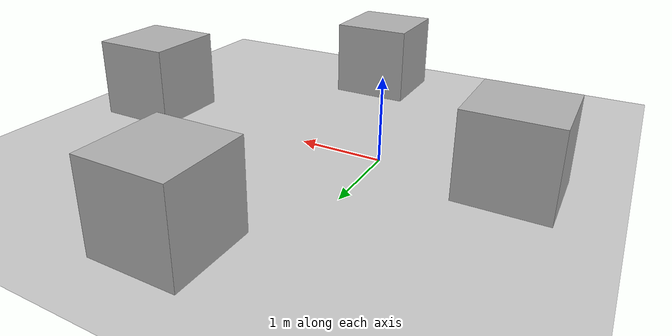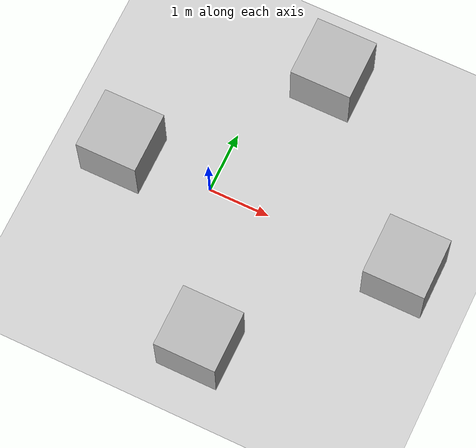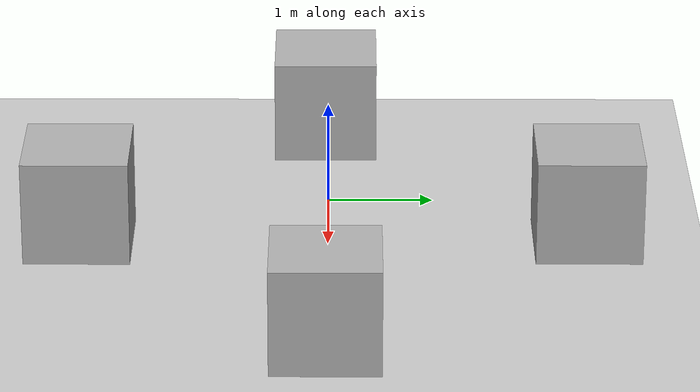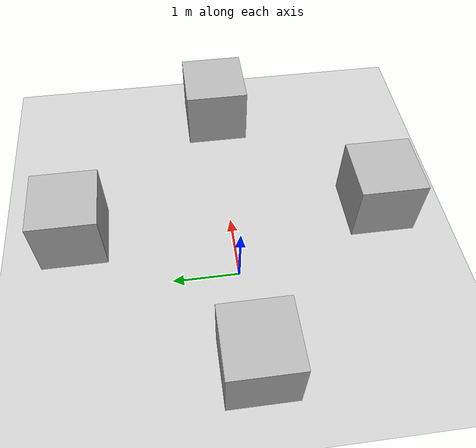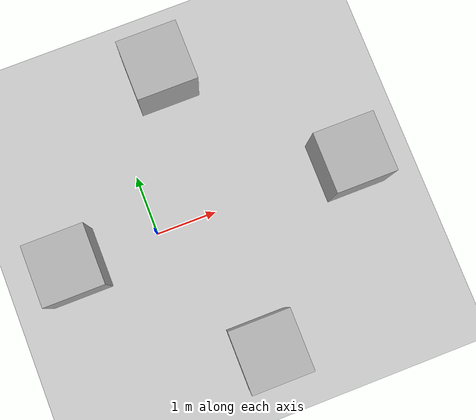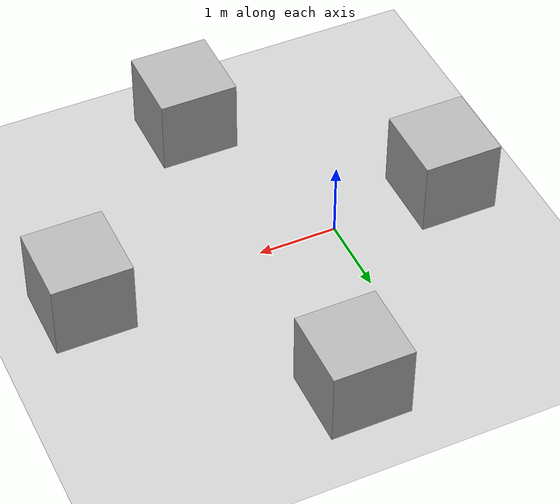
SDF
<sdf version='1.9'>
  <world name='boxes'>
    <physics name='1ms' type='ignored'>
      <max_step_size>0.001</max_step_size>
      <real_time_factor>1</real_time_factor>
      <ode>
        <solver>
          <type>world</type>
          <friction_model>cone_model</friction_model>
        </solver>
      </ode>
      <real_time_update_rate>1000</real_time_update_rate>
    </physics>
    <plugin name='ignition::gazebo::systems::Physics' filename='ignition-gazebo-physics-system'/>
    <plugin name='ignition::gazebo::systems::UserCommands' filename='ignition-gazebo-user-commands-system'/>
    <plugin name='ignition::gazebo::systems::SceneBroadcaster' filename='ignition-gazebo-scene-broadcaster-system'/>
    <plugin name='ignition::gazebo::systems::Contact' filename='ignition-gazebo-contact-system'/>
    <plugin name='gz::sim::systems::Sensors' filename='ignition-gazebo-sensors-system'>
      <render_engine>ogre2</render_engine>
    </plugin>
    <gravity>0 0 -9.8</gravity>
    <magnetic_field>6e-06 2.3e-05 -4.2e-05</magnetic_field>
    <atmosphere type='adiabatic'/>
    <scene>
      <ambient>0.4 0.4 0.4 1</ambient>
      <background>0.7 0.7 0.7 1</background>
      <shadows>true</shadows>
    </scene>
    <model name='ground_plane'>
      <static>true</static>
      <link name='link'>
        <collision name='collision'>
          <geometry>
            <plane>
              <normal>0 0 1</normal>
              <size>100 100</size>
            </plane>
          </geometry>
          <surface>
            <friction>
              <ode>
                <mu>50</mu>
              </ode>
            </friction>
            <bounce/>
            <contact/>
          </surface>
        </collision>
        <visual name='visual'>
          <geometry>
            <plane>
              <normal>0 0 1</normal>
              <size>100 100</size>
            </plane>
          </geometry>
          <material>
            <ambient>0.8 0.8 0.8 1</ambient>
            <diffuse>0.8 0.8 0.8 1</diffuse>
            <specular>0.8 0.8 0.8 1</specular>
          </material>
        </visual>
        <pose>0 0 0 0 -0 0</pose>
        <inertial>
          <pose>0 0 0 0 -0 0</pose>
          <mass>1</mass>
          <inertia>
            <ixx>1</ixx>
            <ixy>0</ixy>
            <ixz>0</ixz>
            <iyy>1</iyy>
            <iyz>0</iyz>
            <izz>1</izz>
          </inertia>
        </inertial>
        <enable_wind>false</enable_wind>
      </link>
      <pose>0 0 0 0 -0 0</pose>
      <self_collide>false</self_collide>
    </model>
    <model name='box'>
      <pose>0.95898 2.43853 0.5 0 0 -0</pose>
      <link name='box_link'>
        <inertial>
          <inertia>
            <ixx>0.16666</ixx>
            <ixy>0</ixy>
            <ixz>0</ixz>
            <iyy>0.16666</iyy>
            <iyz>0</iyz>
            <izz>0.16666</izz>
          </inertia>
          <mass>1</mass>
          <pose>0 0 0 0 -0 0</pose>
        </inertial>
        <collision name='box_collision'>
          <geometry>
            <box>
              <size>1 1 1</size>
            </box>
          </geometry>
          <surface>
            <friction>
              <ode/>
            </friction>
            <bounce/>
            <contact/>
          </surface>
        </collision>
        <visual name='box_visual'>
          <geometry>
            <box>
              <size>1 1 1</size>
            </box>
          </geometry>
          <material>
            <ambient>0.3 0.3 0.3 1</ambient>
            <diffuse>0.7 0.7 0.7 1</diffuse>
            <specular>1 1 1 1</specular>
          </material>
        </visual>
        <pose>0 0 0 0 -0 0</pose>
        <enable_wind>false</enable_wind>
      </link>
      <static>false</static>
      <self_collide>false</self_collide>
    </model>
    <model name='box_0'>
      <pose>0.977496 -2.34308 0.5 -0 -0 0</pose>
      <link name='box_link'>
        <inertial>
          <inertia>
            <ixx>0.16666</ixx>
            <ixy>0</ixy>
            <ixz>0</ixz>
            <iyy>0.16666</iyy>
            <iyz>0</iyz>
            <izz>0.16666</izz>
          </inertia>
          <mass>1</mass>
          <pose>0 0 0 0 -0 0</pose>
        </inertial>
        <collision name='box_collision'>
          <geometry>
            <box>
              <size>1 1 1</size>
            </box>
          </geometry>
          <surface>
            <friction>
              <ode/>
            </friction>
            <bounce/>
            <contact/>
          </surface>
        </collision>
        <visual name='box_visual'>
          <geometry>
            <box>
              <size>1 1 1</size>
            </box>
          </geometry>
          <material>
            <ambient>0.3 0.3 0.3 1</ambient>
            <diffuse>0.7 0.7 0.7 1</diffuse>
            <specular>1 1 1 1</specular>
          </material>
        </visual>
        <pose>0 0 0 0 -0 0</pose>
        <enable_wind>false</enable_wind>
      </link>
      <static>false</static>
      <self_collide>false</self_collide>
    </model>
    <model name='box_1'>
      <pose>3.28475 -0.010445 0.5 0 0 -0</pose>
      <link name='box_link'>
        <inertial>
          <inertia>
            <ixx>0.16666</ixx>
            <ixy>0</ixy>
            <ixz>0</ixz>
            <iyy>0.16666</iyy>
            <iyz>0</iyz>
            <izz>0.16666</izz>
          </inertia>
          <mass>1</mass>
          <pose>0 0 0 0 -0 0</pose>
        </inertial>
        <collision name='box_collision'>
          <geometry>
            <box>
              <size>1 1 1</size>
            </box>
          </geometry>
          <surface>
            <friction>
              <ode/>
            </friction>
            <bounce/>
            <contact/>
          </surface>
        </collision>
        <visual name='box_visual'>
          <geometry>
            <box>
              <size>1 1 1</size>
            </box>
          </geometry>
          <material>
            <ambient>0.3 0.3 0.3 1</ambient>
            <diffuse>0.7 0.7 0.7 1</diffuse>
            <specular>1 1 1 1</specular>
          </material>
        </visual>
        <pose>0 0 0 0 -0 0</pose>
        <enable_wind>false</enable_wind>
      </link>
      <static>false</static>
      <self_collide>false</self_collide>
    </model>
    <model name='box_2'>
      <pose>-1.47309 -0.033712 0.5 0 0 -0</pose>
      <link name='box_link'>
        <inertial>
          <inertia>
            <ixx>0.16666</ixx>
            <ixy>0</ixy>
            <ixz>0</ixz>
            <iyy>0.16666</iyy>
            <iyz>0</iyz>
            <izz>0.16666</izz>
          </inertia>
          <mass>1</mass>
          <pose>0 0 0 0 -0 0</pose>
        </inertial>
        <collision name='box_collision'>
          <geometry>
            <box>
              <size>1 1 1</size>
            </box>
          </geometry>
          <surface>
            <friction>
              <ode/>
            </friction>
            <bounce/>
            <contact/>
          </surface>
        </collision>
        <visual name='box_visual'>
          <geometry>
            <box>
              <size>1 1 1</size>
            </box>
          </geometry>
          <material>
            <ambient>0.3 0.3 0.3 1</ambient>
            <diffuse>0.7 0.7 0.7 1</diffuse>
            <specular>1 1 1 1</specular>
          </material>
        </visual>
        <pose>0 0 0 0 -0 0</pose>
        <enable_wind>false</enable_wind>
      </link>
      <static>false</static>
      <self_collide>false</self_collide>
    </model>
    <light name='sun' type='directional'>
      <pose>0 0 10 0 -0 0</pose>
      <cast_shadows>true</cast_shadows>
      <intensity>1</intensity>
      <direction>-0.5 0.1 -0.9</direction>
      <diffuse>0.8 0.8 0.8 1</diffuse>
      <specular>0.2 0.2 0.2 1</specular>
      <attenuation>
        <range>1000</range>
        <linear>0.01</linear>
        <constant>0.90000000000000002</constant>
        <quadratic>0.001</quadratic>
      </attenuation>
      <spot>
        <inner_angle>0</inner_angle>
        <outer_angle>0</outer_angle>
        <falloff>0</falloff>
      </spot>
    </light>
  </world>
</sdf>
